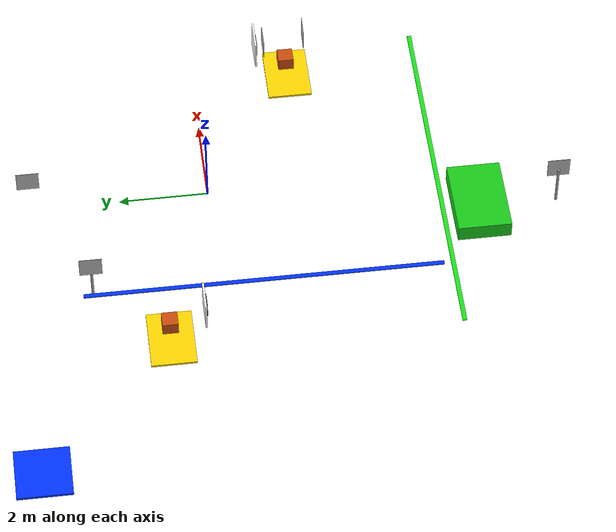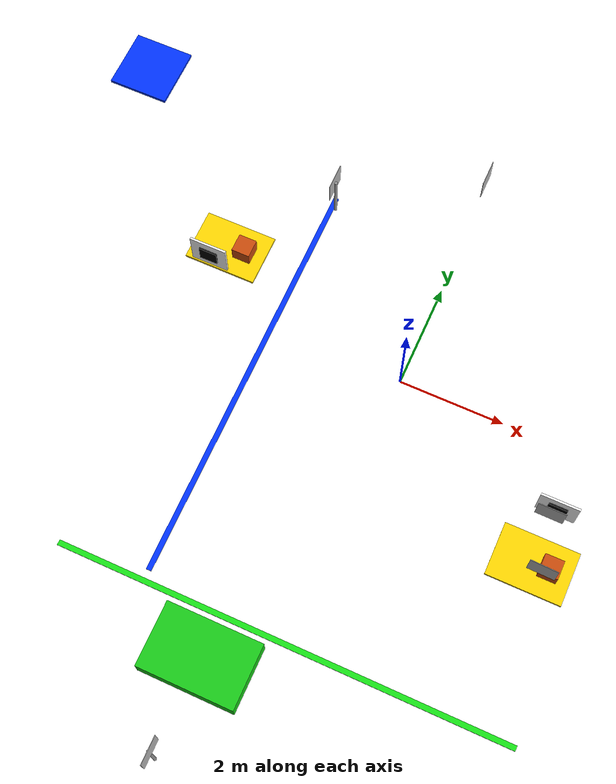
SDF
<sdf version="1.6">
 <world name="default">
  <gravity>0 0 -9.8</gravity>
  <physics default="0" name="default_physics" type="ode">
   <max_step_size>0.001</max_step_size>
   <real_time_factor>1</real_time_factor>
   <real_time_update_rate>1000</real_time_update_rate>
  </physics>
  <light name="Warehouse_CeilingLight_003" type="point">
   <pose>0 0 9 0 0 0</pose>
   <diffuse>0.5 0.5 0.5 1</diffuse>
   <specular>0.2 0.2 0.2 1</specular>
   <attenuation>
    <range>80</range>
    <constant>0.3</constant>
    <linear>0.01</linear>
    <quadratic>0.001</quadratic>
   </attenuation>
   <direction>0.1 0.1 -1</direction>
  </light>
  <model name="home_charging_station_A213696">
   <static>true</static>
   <pose>-7.20 4.20 0.03 0 0 0</pose>
   <link name="link">
    <collision name="collision"><geometry><box><size>1.20 1.20 0.06</size></box></geometry></collision>
    <visual name="visual">
     <geometry><box><size>1.20 1.20 0.06</size></box></geometry>
     <material><ambient>0.0 0.2 1.0 1</ambient><diffuse>0.0 0.2 1.0 1</diffuse></material>
    </visual>
   </link>
  </model>
  <model name="inventory_scan_zone_shelf_A">
   <static>true</static>
   <pose>-4.00 1.20 0.025 0 0 0</pose>
   <link name="link">
    <collision name="collision"><geometry><box><size>1.40 1.00 0.05</size></box></geometry></collision>
    <visual name="visual">
     <geometry><box><size>1.40 1.00 0.05</size></box></geometry>
     <material><ambient>1.0 0.85 0.0 1</ambient><diffuse>1.0 0.85 0.0 1</diffuse></material>
    </visual>
   </link>
  </model>
  <model name="inventory_scan_zone_shelf_B">
   <static>true</static>
   <pose>3.40 -2.20 0.025 0 0 0</pose>
   <link name="link">
    <collision name="collision"><geometry><box><size>1.40 1.00 0.05</size></box></geometry></collision>
    <visual name="visual">
     <geometry><box><size>1.40 1.00 0.05</size></box></geometry>
     <material><ambient>1.0 0.85 0.0 1</ambient><diffuse>1.0 0.85 0.0 1</diffuse></material>
    </visual>
   </link>
  </model>
  <model name="packing_dropoff_station">
   <static>true</static>
   <pose>-1.10 -6.00 0.20 0 0 0</pose>
   <link name="link">
    <collision name="collision"><geometry><box><size>1.80 1.20 0.40</size></box></geometry></collision>
    <visual name="visual">
     <geometry><box><size>1.80 1.20 0.40</size></box></geometry>
     <material><ambient>0.1 0.8 0.1 1</ambient><diffuse>0.1 0.8 0.1 1</diffuse></material>
    </visual>
   </link>
  </model>
  <model name="aruco_like_marker_shelf_A">
   <static>true</static>
   <pose>-4.00 0.45 1.10 0 0 0</pose>
   <link name="link">
    <visual name="white_board">
     <geometry><box><size>0.70 0.04 0.70</size></box></geometry>
     <material><ambient>1 1 1 1</ambient><diffuse>1 1 1 1</diffuse></material>
    </visual>
    <visual name="black_center">
     <pose>0 -0.03 0 0 0 0</pose>
     <geometry><box><size>0.34 0.04 0.34</size></box></geometry>
     <material><ambient>0 0 0 1</ambient><diffuse>0 0 0 1</diffuse></material>
    </visual>
   </link>
  </model>
  <model name="aruco_like_marker_shelf_B">
   <static>true</static>
   <pose>3.40 -1.45 1.10 0 0 0</pose>
   <link name="link">
    <visual name="white_board">
     <geometry><box><size>0.70 0.04 0.70</size></box></geometry>
     <material><ambient>1 1 1 1</ambient><diffuse>1 1 1 1</diffuse></material>
    </visual>
    <visual name="black_center">
     <pose>0 -0.03 0 0 0 0</pose>
     <geometry><box><size>0.34 0.04 0.34</size></box></geometry>
     <material><ambient>0 0 0 1</ambient><diffuse>0 0 0 1</diffuse></material>
    </visual>
   </link>
  </model>
  <model name="delivery_item_box_01">
   <static>true</static>
   <pose>-3.70 1.20 0.18 0 0 0</pose>
   <link name="link">
    <collision name="collision"><geometry><box><size>0.35 0.35 0.35</size></box></geometry></collision>
    <visual name="visual">
     <geometry><box><size>0.35 0.35 0.35</size></box></geometry>
     <material><ambient>0.8 0.3 0.05 1</ambient><diffuse>0.8 0.3 0.05 1</diffuse></material>
    </visual>
   </link>
  </model>
  <model name="delivery_item_box_02">
   <static>true</static>
   <pose>3.70 -2.20 0.18 0 0 0</pose>
   <link name="link">
    <collision name="collision"><geometry><box><size>0.35 0.35 0.35</size></box></geometry></collision>
    <visual name="visual">
     <geometry><box><size>0.35 0.35 0.35</size></box></geometry>
     <material><ambient>0.8 0.3 0.05 1</ambient><diffuse>0.8 0.3 0.05 1</diffuse></material>
    </visual>
   </link>
  </model>
  <model name="main_robot_lane_blue">
   <static>true</static>
   <pose>-2.60 -1.00 0.012 0 0 0</pose>
   <link name="link">
    <visual name="visual">
     <geometry><box><size>0.10 8.00 0.02</size></box></geometry>
     <material><ambient>0.0 0.2 1.0 1</ambient><diffuse>0.0 0.2 1.0 1</diffuse></material>
    </visual>
   </link>
  </model>
  <model name="cross_robot_lane_green">
   <static>true</static>
   <pose>0.00 -5.20 0.012 0 0 0</pose>
   <link name="link">
    <visual name="visual">
     <geometry><box><size>8.50 0.10 0.02</size></box></geometry>
     <material><ambient>0.1 0.9 0.1 1</ambient><diffuse>0.1 0.9 0.1 1</diffuse></material>
    </visual>
   </link>
  </model>
  <include>
   <name>qr_home_board</name>
   <uri>model://qr_home</uri>
   <pose>-2.5536 2.7982 0.95242 0 0 0</pose>
  </include>
  <include><name>qr_stand_home</name><uri>model://qr_stand</uri><pose>-2.52555 2.78712 0 0 0 0</pose></include>
  <include>
   <name>qr_pickup_board</name>
   <uri>model://qr_pickup</uri>
   <pose>-1.04812 -7.76857 1.04543 0 0 0</pose>
  </include>
  <include>
   <name>qr_stand_pickup</name>
   <uri>model://qr_stand</uri>
   <pose>-1.08189 -7.76528 0 0 0 0</pose>
  </include>
  <include>
   <name>qr_shelf_a_board</name>
   <uri>model://qr_shelf_a</uri>
   <pose>3.31965 -1.63787 1.25327 0 0 -1.57891</pose>
  </include>
  <include>
   <name>qr_shelf_b_board</name>
   <uri>model://qr_shelf_b</uri>
   <pose>3.53456 -2.57978 1.2205 0 0 1.54479</pose>
  </include>
  <include><name>qr_dropoff_board</name><uri>model://qr_dropoff</uri><pose>0 4 1.0 0 0 0</pose></include>
 </world>
</sdf>

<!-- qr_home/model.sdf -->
<sdf version="1.6">
  <model name="qr_home">
    <static>true</static>
    <link name="link">
      <visual name="board_visual">
        <pose>0 0 0 0 0 0</pose>
        <geometry>
          <box>
            <size>0.01 0.50 0.50</size>
          </box>
        </geometry>
        <material>
          <script>
            <uri>model://qr_home/materials/scripts</uri>
            <uri>model://qr_home/materials/textures</uri>
            <name>QRBoard/qr_home</name>
          </script>
        </material>
      </visual>
    </link>
  </model>
</sdf>

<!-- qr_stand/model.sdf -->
<sdf version="1.6">
  <model name="qr_stand">
    <static>true</static>
    <link name="link">
      <visual name="pole_visual">
        <pose>0 0 0.5 0 0 0</pose>
        <geometry>
          <cylinder>
            <radius>0.03</radius>
            <length>1.0</length>
          </cylinder>
        </geometry>
        <material>
          <ambient>0.6 0.6 0.6 1</ambient>
          <diffuse>0.6 0.6 0.6 1</diffuse>
        </material>
      </visual>
    </link>
  </model>
</sdf>

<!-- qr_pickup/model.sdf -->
<sdf version="1.6">
  <model name="qr_pickup">
    <static>true</static>
    <link name="link">
      <visual name="board_visual">
        <pose>0 0 0 0 0 0</pose>
        <geometry>
          <box>
            <size>0.01 0.50 0.50</size>
          </box>
        </geometry>
        <material>
          <script>
            <uri>model://qr_pickup/materials/scripts</uri>
            <uri>model://qr_pickup/materials/textures</uri>
            <name>QRBoard/qr_pickup</name>
          </script>
        </material>
      </visual>
    </link>
  </model>
</sdf>

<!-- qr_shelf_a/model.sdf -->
<sdf version="1.6">
  <model name="qr_shelf_a">
    <static>true</static>
    <link name="link">
      <visual name="board_visual">
        <pose>0 0 0 0 0 0</pose>
        <geometry>
          <box>
            <size>0.01 0.50 0.50</size>
          </box>
        </geometry>
        <material>
          <script>
            <uri>model://qr_shelf_a/materials/scripts</uri>
            <uri>model://qr_shelf_a/materials/textures</uri>
            <name>QRBoard/qr_shelf_a</name>
          </script>
        </material>
      </visual>
    </link>
  </model>
</sdf>

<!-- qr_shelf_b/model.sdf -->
<sdf version="1.6">
  <model name="qr_shelf_b">
    <static>true</static>
    <link name="link">
      <visual name="board_visual">
        <pose>0 0 0 0 0 0</pose>
        <geometry>
          <box>
            <size>0.01 0.50 0.50</size>
          </box>
        </geometry>
        <material>
          <script>
            <uri>model://qr_shelf_b/materials/scripts</uri>
            <uri>model://qr_shelf_b/materials/textures</uri>
            <name>QRBoard/qr_shelf_b</name>
          </script>
        </material>
      </visual>
    </link>
  </model>
</sdf>

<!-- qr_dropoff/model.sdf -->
<sdf version="1.6">
  <model name="qr_dropoff">
    <static>true</static>
    <link name="link">
      <visual name="board_visual">
        <pose>0 0 0 0 0 0</pose>
        <geometry>
          <box>
            <size>0.01 0.50 0.50</size>
          </box>
        </geometry>
        <material>
          <script>
            <uri>model://qr_dropoff/materials/scripts</uri>
            <uri>model://qr_dropoff/materials/textures</uri>
            <name>QRBoard/qr_dropoff</name>
          </script>
        </material>
      </visual>
    </link>
  </model>
</sdf>
